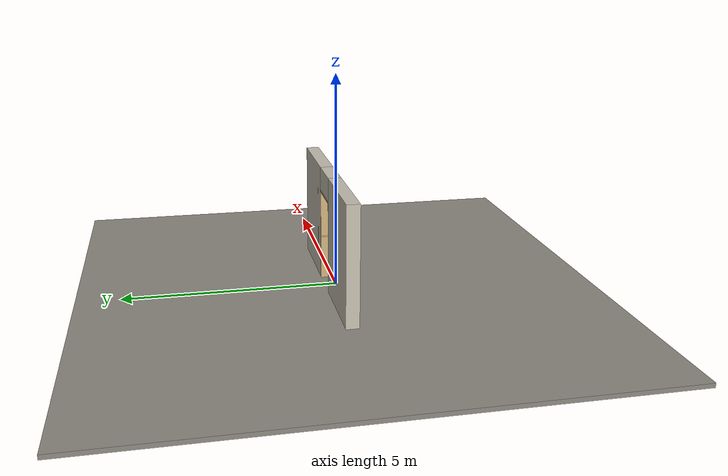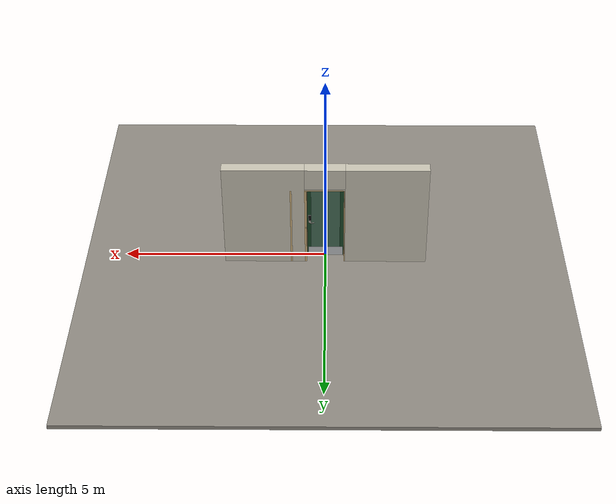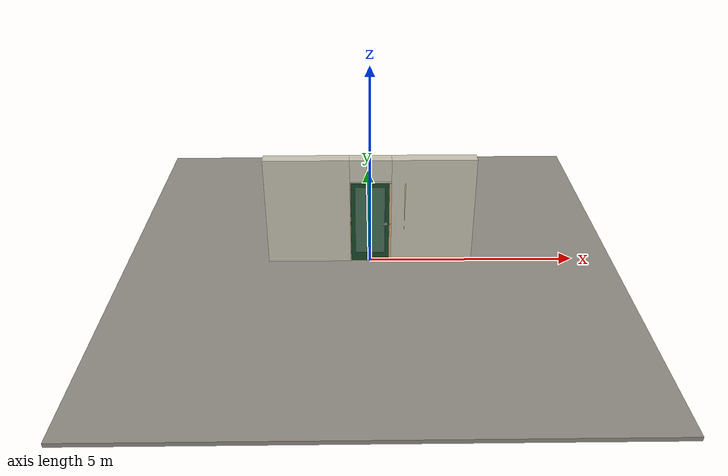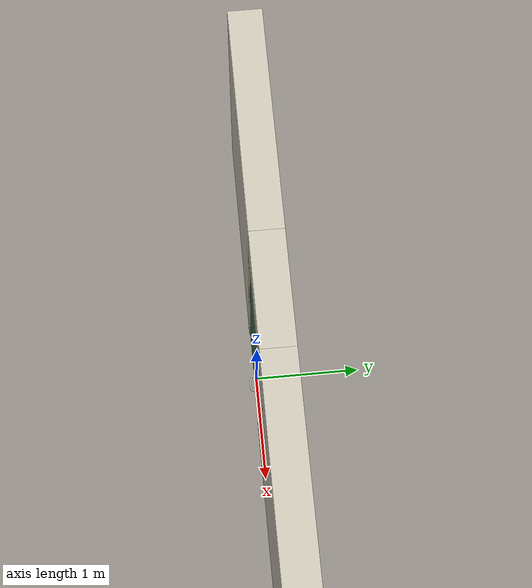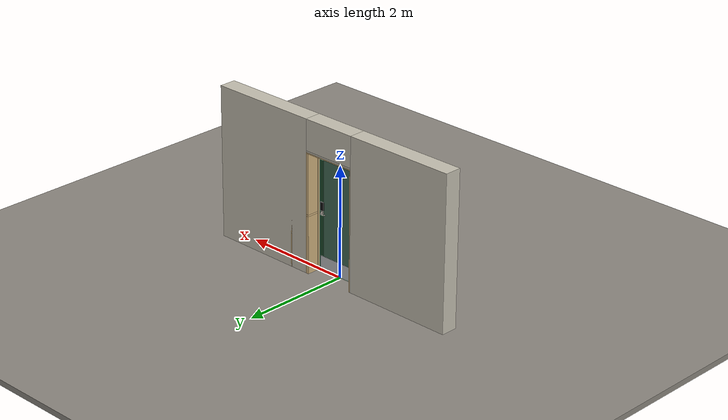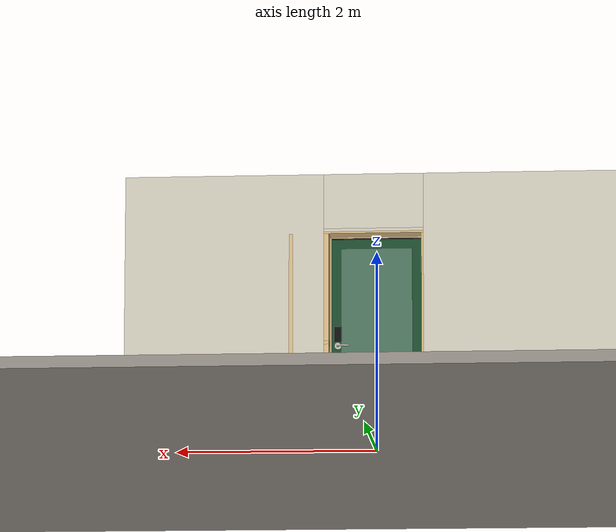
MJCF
<?xml version="1.0" ?>
<mujoco model="db0233_swing_single_simple">
  <compiler angle="radian" meshdir="../../hardware" texturedir="../../textures" autolimits="true" inertiafromgeom="false"/>
  <option timestep="0.002" integrator="implicitfast" cone="elliptic" impratio="10" noslip_iterations="3">
    <flag multiccd="enable"/>
  </option>
  <size memory="16M"/>
  <default>
    <geom condim="4" solref="0.005 1" solimp="0.95 0.99 0.001"/>
    <joint solreflimit="0.005 1" solimplimit="0.95 0.99 0.001"/>
    <tendon solreflimit="0.005 1"/>
    <equality solref="0.002 1"/>
  </default>
  <visual>
    <headlight ambient="0.4 0.4 0.4" diffuse="0.7 0.7 0.7" specular="0.2 0.2 0.2"/>
    <quality shadowsize="4096"/>
    <map znear="0.01" zfar="60"/>
  </visual>
  <asset>
    <mesh name="hinge_2af0f4d6ca" file="hinge_2af0f4d6ca.obj"/>
    <mesh name="hinge_jamb_c0c0a62ada" file="hinge_jamb_c0c0a62ada.obj"/>
    <mesh name="keypad_body_3b2d063948" file="keypad_body_3b2d063948.obj"/>
    <mesh name="lever_a61139b160" file="lever_a61139b160.obj"/>
    <material name="mat_floor" rgba="0.55 0.53 0.5 1" specular="0.2" shininess="0.15" reflectance="0"/>
    <material name="mat_wall" rgba="0.78 0.76 0.7 1" specular="0.2" shininess="0.1" reflectance="0"/>
    <material name="mat_leaf" rgba="0.1 0.28 0.16 1" specular="0.23" shininess="0.39" reflectance="0.02"/>
    <material name="mat_glass" rgba="0.85 0.92 0.95 0.25" specular="0.2" shininess="0.95" reflectance="0.1"/>
    <material name="mat_hinge" rgba="0.65 0.66 0.68 1" specular="0.74" shininess="0.5" reflectance="0.36"/>
    <material name="mat_op_nickel_satin" rgba="0.72 0.7 0.66 1" specular="0.8" shininess="0.65" reflectance="0.4"/>
    <material name="mat_trim" rgba="0.85 0.66 0.3 1" specular="0.8" shininess="0.75" reflectance="0.4"/>
    <material name="mat_keypad" rgba="0.05 0.05 0.05 1" specular="0.38" shininess="0.3" reflectance="0.12"/>
    <material name="mat_key" rgba="0.85 0.85 0.82 1" specular="0.2" shininess="0.5" reflectance="0"/>
    <material name="mat_bolt" rgba="0.85 0.66 0.3 1" specular="0.8" shininess="0.75" reflectance="0.4"/>
    <material name="mat_frame" rgba="0.82 0.7 0.5 1" specular="0.2" shininess="0.45" reflectance="0"/>
    <material name="mat_seal" rgba="0.1 0.1 0.1 1" specular="0.2" shininess="0.1" reflectance="0"/>
    <material name="mat_kick" rgba="0.75 0.76 0.77 1" specular="0.8" shininess="0.65" reflectance="0.4"/>
    <material name="mat_mailslot" rgba="0.85 0.66 0.3 1" specular="0.8" shininess="0.75" reflectance="0.4"/>
    <material name="mat_drip" rgba="0.8 0.81 0.83 1" specular="0.8" shininess="0.6" reflectance="0.4"/>
    <material name="mat_sidelite" rgba="0.85 0.92 0.95 0.25" specular="0.2" shininess="0.95" reflectance="0.1"/>
    <texture name="skybox" type="skybox" builtin="gradient" rgb1="0.6 0.7 0.85" rgb2="0.9 0.92 0.95" width="256" height="256"/>
  </asset>
  <worldbody>
    <light name="sun" pos="1.5 -2.5 4" dir="-0.3 0.5 -0.8" directional="true" diffuse="0.8 0.8 0.8" specular="0.3 0.3 0.3" castshadow="true"/>
    <light name="fill" pos="-1.5 2.5 3" dir="0.3 -0.5 -0.7" directional="true" diffuse="0.35 0.35 0.4" castshadow="false"/>
    <camera name="robot_view" pos="0 -2.516812 1.812087" xyaxes="1 0 0 0 0.26963 0.962964" fovy="52"/>
    <camera name="far_view" pos="0 2.758812 1.812087" xyaxes="-1 0 0 0 -0.26963 0.962964" fovy="52"/>
    <camera name="iso" pos="2.004737 -2.094762 2.234138" xyaxes="0.741536 0.670913 0 -0.242917 0.268487 0.932151" fovy="46"/>
    <camera name="detail_handle" pos="0.4769 -0.877 1.33" xyaxes="0.97561 0.219512 0 -0.070934 0.315262 0.94635" fovy="38"/>
    <geom name="floor" type="box" size="6 6 0.05" pos="0 0 -0.05" material="mat_floor" group="0" contype="1" conaffinity="1" friction="0.8 0.005 0.0001" density="2400"/>
    <geom name="wall_left" type="box" size="1.01025 0.15 1.3735" pos="-1.48975 0.121 1.3735" material="mat_wall" group="0" contype="1" conaffinity="1" friction="0.6 0.005 0.0001" density="800"/>
    <geom name="wall_right" type="box" size="0.99525 0.15 1.3735" pos="1.50475 0.121 1.3735" material="mat_wall" group="0" contype="1" conaffinity="1" friction="0.6 0.005 0.0001" density="800"/>
    <geom name="wall_header" type="box" size="0.4945 0.15 0.2755" pos="0.015 0.121 2.4715" material="mat_wall" group="0" contype="1" conaffinity="1" friction="0.6 0.005 0.0001" density="800"/>
    <geom name="hinge_0_jamb" type="mesh" mesh="hinge_jamb_c0c0a62ada" pos="-0.4575 -0.029 0.259" material="mat_hinge" group="1" contype="0" conaffinity="0" density="7850"/>
    <geom name="hinge_1_jamb" type="mesh" mesh="hinge_jamb_c0c0a62ada" pos="-0.4575 -0.029 1.076" material="mat_hinge" group="1" contype="0" conaffinity="0" density="7850"/>
    <geom name="hinge_2_jamb" type="mesh" mesh="hinge_jamb_c0c0a62ada" pos="-0.4575 -0.029 1.963" material="mat_hinge" group="1" contype="0" conaffinity="0" density="7850"/>
    <geom name="jamb_hinge" type="box" size="0.0095 0.15 1.0735" pos="-0.47 0.121 1.0735" material="mat_frame" group="0" contype="1" conaffinity="1" friction="0.6 0.005 0.0001" density="400"/>
    <geom name="strike_1050_wall_n" type="box" size="0.0245 0.131575 0.0167" pos="0.485 0.139425 1.05" material="mat_frame" group="0" contype="1" conaffinity="1" friction="0.6 0.005 0.0001" density="400"/>
    <geom name="strike_1050_wall_p" type="box" size="0.0245 0.008 0.0167" pos="0.485 -0.01585 1.05" material="mat_frame" group="0" contype="1" conaffinity="1" friction="0.6 0.005 0.0001" density="400"/>
    <geom name="strike_1050_ramp" type="box" size="0.0245 0.01649 0.0167" pos="0.489636 -0.028673 1.05" quat="0.977148 0 0 0.212558" material="mat_frame" group="0" contype="1" conaffinity="1" friction="0.12 0.005 0.0001" density="400"/>
    <geom name="strike_1050_back" type="box" size="0.01615 0.00785 0.0167" pos="0.49335 0 1.05" material="mat_frame" group="0" contype="1" conaffinity="1" friction="0.6 0.005 0.0001" density="400"/>
    <geom name="jamb_strike_0" type="box" size="0.0245 0.15 0.51665" pos="0.485 0.121 0.51665" material="mat_frame" group="0" contype="1" conaffinity="1" friction="0.6 0.005 0.0001" density="400"/>
    <geom name="jamb_strike_1" type="box" size="0.0245 0.15 0.54015" pos="0.485 0.121 1.60685" material="mat_frame" group="0" contype="1" conaffinity="1" friction="0.6 0.005 0.0001" density="400"/>
    <geom name="jamb_head" type="box" size="0.4945 0.15 0.0095" pos="0.015 0.121 2.1565" material="mat_frame" group="0" contype="1" conaffinity="1" friction="0.6 0.005 0.0001" density="400"/>
    <geom name="head_stud" type="box" size="0.4945 0.15 0.015" pos="0.015 0.121 2.181" material="mat_wall" group="0" contype="1" conaffinity="1" friction="0.6 0.005 0.0001" density="500"/>
    <geom name="stop_hinge" type="box" size="0.0055 0.016 1.0735" pos="-0.455 0.0385 1.0735" material="mat_frame" group="0" contype="1" conaffinity="1" friction="0.6 0.005 0.0001" density="400"/>
    <geom name="stop_strike" type="box" size="0.0055 0.016 1.0735" pos="0.455 0.0385 1.0735" material="mat_frame" group="0" contype="1" conaffinity="1" friction="0.6 0.005 0.0001" density="400"/>
    <geom name="stop_head" type="box" size="0.4605 0.016 0.0055" pos="0 0.0385 2.1415" material="mat_frame" group="0" contype="1" conaffinity="1" friction="0.6 0.005 0.0001" density="400"/>
    <geom name="seal_hinge" type="box" size="0.004 0.004 1.0735" pos="-0.4575 0.026 1.0735" material="mat_seal" group="1" contype="0" conaffinity="0" density="1100"/>
    <geom name="seal_strike" type="box" size="0.004 0.004 1.0735" pos="0.4575 0.026 1.0735" material="mat_seal" group="1" contype="0" conaffinity="0" density="1100"/>
    <geom name="seal_head" type="box" size="0.4405 0.004 0.008" pos="0 0.026 2.135" material="mat_seal" group="1" contype="0" conaffinity="0" density="1100"/>
    <geom name="sidelite_glass" type="box" size="0.15 0.003 1.0235" pos="0.6705 0 1.0735" material="mat_sidelite" group="0" contype="1" conaffinity="1" friction="0.6 0.005 0.0001" density="2500"/>
    <geom name="sidelite_frame" type="box" size="0.02 0.15 1.0735" pos="0.8405 0.121 1.0735" material="mat_frame" group="0" contype="1" conaffinity="1" friction="0.6 0.005 0.0001" density="600"/>
    <site name="approach_point" pos="0 -1.5 0" quat="1 0 0 0" size="0.05" rgba="0.2 0.9 0.2 0.5" group="4"/>
    <site name="goal_point" pos="0 1.5 0" quat="1 0 0 0" size="0.05" rgba="0.2 0.9 0.2 0.5" group="4"/>
    <site name="door_plane_center" pos="0 0 1.0735" quat="1 0 0 0" size="0.02" rgba="0.2 0.9 0.2 0.5" group="4"/>
    <body name="leaf" pos="-0.4605 0 0">
      <inertial pos="0.456557 0.005431 0.878835" mass="30.552097" quat="0.495794 0.50435 -0.499554 0.500265" diaginertia="2.316866924 13.39183943 15.695365301"/>
      <joint name="leaf_hinge" type="hinge" axis="0 0 -1" pos="0.003 -0.029 0" limited="true" range="0 1.570796" solreflimit="0.02 1" damping="0.318966" frictionloss="1.73044" armature="0.02"/>
      <geom name="leaf_slab" type="box" size="0.457 0.022 1.067" pos="0.46 0 1.076" material="mat_leaf" group="0" contype="1" conaffinity="1" friction="0.4 0.005 0.0001" density="1"/>
      <geom name="leaf_glass_0" type="box" size="0.35646 0.0228 0.89628" pos="0.46 0 1.14002" material="mat_glass" group="1" contype="0" conaffinity="0" density="1"/>
      <geom name="hinge_0" type="mesh" mesh="hinge_2af0f4d6ca" pos="0.003 -0.029 0.259" material="mat_hinge" group="1" contype="0" conaffinity="0" density="7850"/>
      <geom name="hinge_1" type="mesh" mesh="hinge_2af0f4d6ca" pos="0.003 -0.029 1.076" material="mat_hinge" group="1" contype="0" conaffinity="0" density="7850"/>
      <geom name="hinge_2" type="mesh" mesh="hinge_2af0f4d6ca" pos="0.003 -0.029 1.963" material="mat_hinge" group="1" contype="0" conaffinity="0" density="7850"/>
      <geom name="leaf_keypad_body" type="mesh" mesh="keypad_body_3b2d063948" pos="0.847 0.022 1.17" quat="0 0 0.707107 0.707107" material="mat_keypad" group="0" contype="1" conaffinity="1" friction="0.6 0.005 0.0001" density="2000"/>
      <geom name="leaf_latch_bolt_faceplate" type="box" size="0.0006 0.01235 0.0267" pos="0.9164 0 1.05" material="mat_bolt" group="1" contype="0" conaffinity="0" density="8500"/>
      <geom name="kick_plate_p" type="box" size="0.427 0.0008 0.125" pos="0.46 0.0228 0.144" material="mat_kick" group="2" contype="0" conaffinity="0" density="7900"/>
      <site name="leaf_edge_mid" pos="0.917 0 1.067" quat="1 0 0 0" size="0.02" rgba="0.2 0.9 0.2 0.5" group="4"/>
      <body name="leaf_handle" pos="0.847 0 1.05">
        <inertial pos="-0.025007 -0.057273 0" mass="0.41" quat="-0.235955 0 0 0.971764" diaginertia="0.000156759 0.000717302 0.000791484"/>
        <joint name="leaf_handle_hinge" type="hinge" axis="0 -1 0" limited="true" range="0 0.87" damping="0.208392" frictionloss="0.052" stiffness="1" springref="-0.35" armature="0.01"/>
        <geom name="leaf_handle_lever_n" type="mesh" mesh="lever_a61139b160" pos="0 -0.022 0" quat="0.707107 0.707107 0 0" material="mat_op_nickel_satin" group="1" contype="0" conaffinity="0" density="3000"/>
        <geom name="leaf_handle_lever_col_n" type="capsule" size="0.008 0.048" pos="-0.056 -0.077 0" quat="0.707107 0 -0.707107 0" material="mat_op_nickel_satin" group="3" contype="1" conaffinity="1" rgba="0.8 0.3 0.3 0.25" friction="0.7 0.01 0.0001" density="3000"/>
        <geom name="leaf_handle_hub_col_n" type="cylinder" size="0.012 0.022" pos="0 -0.052 0" quat="0.707107 -0.707107 0 0" material="mat_op_nickel_satin" group="3" contype="1" conaffinity="1" rgba="0.8 0.3 0.3 0.25" friction="0.6 0.005 0.0001" density="3000"/>
        <site name="leaf_handle_grip_n" pos="-0.0896 -0.077 0" quat="1 0 0 0" size="0.012" rgba="0.2 0.9 0.2 0.5" group="4"/>
      </body>
      <body name="leaf_handle_out" pos="0.847 0 1.05">
        <inertial pos="-0.025007 0.057273 0" mass="0.41" quat="0.235955 0 0 0.971764" diaginertia="0.000156759 0.000717302 0.000791484"/>
        <joint name="leaf_handle_out_hinge" type="hinge" axis="0 -1 0" limited="true" range="0 0.05" damping="0.208382" frictionloss="0.052" stiffness="1" springref="-0.35" armature="0.01"/>
        <geom name="leaf_handle_out_lever_p" type="mesh" mesh="lever_a61139b160" pos="0 0.022 0" quat="-0.707107 0.707107 0 0" material="mat_op_nickel_satin" group="1" contype="0" conaffinity="0" density="3000"/>
        <geom name="leaf_handle_out_lever_col_p" type="capsule" size="0.008 0.048" pos="-0.056 0.077 0" quat="0.707107 0 -0.707107 0" material="mat_op_nickel_satin" group="3" contype="1" conaffinity="1" rgba="0.8 0.3 0.3 0.25" friction="0.7 0.01 0.0001" density="3000"/>
        <geom name="leaf_handle_out_hub_col_p" type="cylinder" size="0.012 0.022" pos="0 0.052 0" quat="0.707107 -0.707107 0 0" material="mat_op_nickel_satin" group="3" contype="1" conaffinity="1" rgba="0.8 0.3 0.3 0.25" friction="0.6 0.005 0.0001" density="3000"/>
        <site name="leaf_handle_out_grip_p" pos="-0.0896 0.077 0" quat="1 0 0 0" size="0.012" rgba="0.2 0.9 0.2 0.5" group="4"/>
      </body>
      <body name="leaf_latch_bolt" pos="0.917 0 1.05">
        <inertial pos="-0.00865 0 0" mass="0.041419" quat="0.92388 -0.382683 0 0" diaginertia="0.000000798 0.000005598 0.000005598"/>
        <joint name="leaf_latch_bolt_slide" type="slide" axis="-1 0 0" limited="true" range="0 0.0127" damping="2" frictionloss="0.3" stiffness="300" springref="-0.008333" armature="0.1"/>
        <geom name="leaf_latch_bolt_capsule" type="capsule" size="0.00635 0.015" pos="-0.00865 0 0" quat="0.707107 0 0.707107 0" material="mat_bolt" group="0" contype="1" conaffinity="1" friction="0.2 0.005 0.0001" density="8500"/>
      </body>
    </body>
  </worldbody>
  <tendon>
    <fixed name="leaf_latch_bolt_coupling" limited="true" range="0 10">
      <joint joint="leaf_latch_bolt_slide" coef="1"/>
      <joint joint="leaf_handle_hinge" coef="-0.015679"/>
      <joint joint="leaf_handle_out_hinge" coef="-0.015679"/>
    </fixed>
  </tendon>
  <sensor>
    <jointpos name="leaf_hinge_pos" joint="leaf_hinge"/>
    <jointvel name="leaf_hinge_vel" joint="leaf_hinge"/>
    <jointpos name="leaf_handle_hinge_pos" joint="leaf_handle_hinge"/>
    <jointvel name="leaf_handle_hinge_vel" joint="leaf_handle_hinge"/>
    <jointpos name="leaf_handle_out_hinge_pos" joint="leaf_handle_out_hinge"/>
    <jointvel name="leaf_handle_out_hinge_vel" joint="leaf_handle_out_hinge"/>
    <jointpos name="leaf_latch_bolt_slide_pos" joint="leaf_latch_bolt_slide"/>
    <jointvel name="leaf_latch_bolt_slide_vel" joint="leaf_latch_bolt_slide"/>
  </sensor>
</mujoco>
